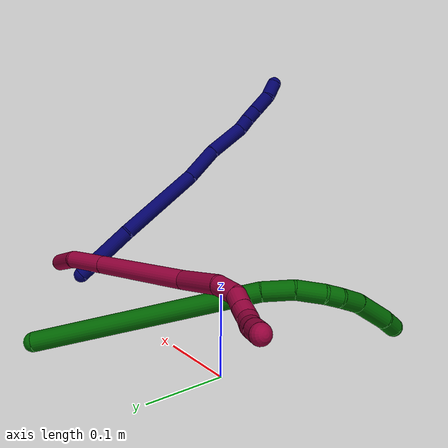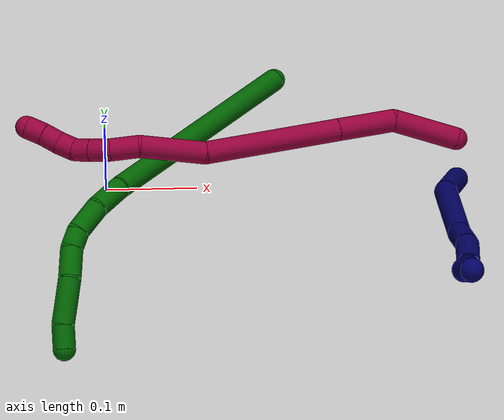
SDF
<sdf version="1.7">
 <world name="default">
  <model name="6">
   <static>0</static>
   <link name="6">
    <collision name="collision-cylinder-e_1_1_4">
     <pose>-0.040347 -0.030012 -0.136554 2.92525 -0.280944 -1.83178</pose>
     <geometry><cylinder><radius>0.0125</radius><length>0.291037</length></cylinder></geometry>
     <surface>
      <friction><ode><mu>1.16</mu><mu2>1.16</mu2><slip1>0</slip1><slip2>0</slip2></ode></friction>
      <contact><ode><kp>1e+06</kp><kd>1</kd><max_vel>0</max_vel><min_depth>0.001</min_depth></ode></contact>
     </surface>
    </collision>
    <visual name="visual-cylinder-e_1_1_4">
     <pose>-0.040347 -0.030012 -0.136554 2.92525 -0.280944 -1.83178</pose>
     <geometry><cylinder><radius>0.0125</radius><length>0.291037</length></cylinder></geometry>
     <material><ambient>0 0.392157 0.003922 1</ambient></material>
    </visual>
    <collision name="collision-cylinder-e_2_4_5">
     <pose>-0.085473 -0.067326 -0.291244 2.75883 -0.239762 -1.11245</pose>
     <geometry><cylinder><radius>0.0125</radius><length>0.040254</length></cylinder></geometry>
     <surface>
      <friction><ode><mu>1.16</mu><mu2>1.16</mu2><slip1>0</slip1><slip2>0</slip2></ode></friction>
      <contact><ode><kp>1e+06</kp><kd>1</kd><max_vel>0</max_vel><min_depth>0.001</min_depth></ode></contact>
     </surface>
    </collision>
    <visual name="visual-cylinder-e_2_4_5">
     <pose>-0.085473 -0.067326 -0.291244 2.75883 -0.239762 -1.11245</pose>
     <geometry><cylinder><radius>0.0125</radius><length>0.040254</length></cylinder></geometry>
     <material><ambient>0 0.392157 0.003922 1</ambient></material>
    </visual>
    <collision name="collision-cylinder-e_3_5_6">
     <pose>-0.094456 -0.085157 -0.323836 2.51209 -0.230875 -0.68429</pose>
     <geometry><cylinder><radius>0.0125</radius><length>0.036742</length></cylinder></geometry>
     <surface>
      <friction><ode><mu>1.16</mu><mu2>1.16</mu2><slip1>0</slip1><slip2>0</slip2></ode></friction>
      <contact><ode><kp>1e+06</kp><kd>1</kd><max_vel>0</max_vel><min_depth>0.001</min_depth></ode></contact>
     </surface>
    </collision>
    <visual name="visual-cylinder-e_3_5_6">
     <pose>-0.094456 -0.085157 -0.323836 2.51209 -0.230875 -0.68429</pose>
     <geometry><cylinder><radius>0.0125</radius><length>0.036742</length></cylinder></geometry>
     <material><ambient>0 0.392157 0.003922 1</ambient></material>
    </visual>
    <collision name="collision-cylinder-e_4_6_7">
     <pose>-0.102871 -0.103115 -0.344403 2.25913 -0.41261 -0.834242</pose>
     <geometry><cylinder><radius>0.0125</radius><length>0.021002</length></cylinder></geometry>
     <surface>
      <friction><ode><mu>1.16</mu><mu2>1.16</mu2><slip1>0</slip1><slip2>0</slip2></ode></friction>
      <contact><ode><kp>1e+06</kp><kd>1</kd><max_vel>0</max_vel><min_depth>0.001</min_depth></ode></contact>
     </surface>
    </collision>
    <visual name="visual-cylinder-e_4_6_7">
     <pose>-0.102871 -0.103115 -0.344403 2.25913 -0.41261 -0.834242</pose>
     <geometry><cylinder><radius>0.0125</radius><length>0.021002</length></cylinder></geometry>
     <material><ambient>0 0.392157 0.003922 1</ambient></material>
    </visual>
    <collision name="collision-cylinder-e_5_7_8">
     <pose>-0.116261 -0.122881 -0.356475 2.02093 -0.590239 -0.902378</pose>
     <geometry><cylinder><radius>0.0125</radius><length>0.032983</length></cylinder></geometry>
     <surface>
      <friction><ode><mu>1.16</mu><mu2>1.16</mu2><slip1>0</slip1><slip2>0</slip2></ode></friction>
      <contact><ode><kp>1e+06</kp><kd>1</kd><max_vel>0</max_vel><min_depth>0.001</min_depth></ode></contact>
     </surface>
    </collision>
    <visual name="visual-cylinder-e_5_7_8">
     <pose>-0.116261 -0.122881 -0.356475 2.02093 -0.590239 -0.902378</pose>
     <geometry><cylinder><radius>0.0125</radius><length>0.032983</length></cylinder></geometry>
     <material><ambient>0 0.392157 0.003922 1</ambient></material>
    </visual>
    <collision name="collision-cylinder-e_6_8_9">
     <pose>-0.135298 -0.157588 -0.37032 1.90962 -0.393922 -0.549542</pose>
     <geometry><cylinder><radius>0.0125</radius><length>0.051371</length></cylinder></geometry>
     <surface>
      <friction><ode><mu>1.16</mu><mu2>1.16</mu2><slip1>0</slip1><slip2>0</slip2></ode></friction>
      <contact><ode><kp>1e+06</kp><kd>1</kd><max_vel>0</max_vel><min_depth>0.001</min_depth></ode></contact>
     </surface>
    </collision>
    <visual name="visual-cylinder-e_6_8_9">
     <pose>-0.135298 -0.157588 -0.37032 1.90962 -0.393922 -0.549542</pose>
     <geometry><cylinder><radius>0.0125</radius><length>0.051371</length></cylinder></geometry>
     <material><ambient>0 0.392157 0.003922 1</ambient></material>
    </visual>
    <collision name="collision-cylinder-e_7_9_2">
     <pose>-0.151438 -0.191566 -0.379881 1.71434 -0.491732 -0.564186</pose>
     <geometry><cylinder><radius>0.0125</radius><length>0.026611</length></cylinder></geometry>
     <surface>
      <friction><ode><mu>1.16</mu><mu2>1.16</mu2><slip1>0</slip1><slip2>0</slip2></ode></friction>
      <contact><ode><kp>1e+06</kp><kd>1</kd><max_vel>0</max_vel><min_depth>0.001</min_depth></ode></contact>
     </surface>
    </collision>
    <visual name="visual-cylinder-e_7_9_2">
     <pose>-0.151438 -0.191566 -0.379881 1.71434 -0.491732 -0.564186</pose>
     <geometry><cylinder><radius>0.0125</radius><length>0.026611</length></cylinder></geometry>
     <material><ambient>0 0.392157 0.003922 1</ambient></material>
    </visual>
    <collision name="collision-sphere-2">
     <pose>-0.157721 -0.203174 -0.381559 0 -0 0</pose>
     <geometry><sphere><radius>0.0125</radius></sphere></geometry>
     <surface>
      <friction><ode><mu>1.16</mu><mu2>1.16</mu2><slip1>0</slip1><slip2>0</slip2></ode></friction>
      <contact><ode><kp>1e+06</kp><kd>1</kd><max_vel>0</max_vel><min_depth>0.001</min_depth></ode></contact>
     </surface>
    </collision>
    <visual name="visual-sphere-2">
     <pose>-0.157721 -0.203174 -0.381559 0 -0 0</pose>
     <geometry><sphere><radius>0.0125</radius></sphere></geometry>
     <material><ambient>0 0.392157 0.003922 1</ambient></material>
    </visual>
    <collision name="collision-sphere-9">
     <pose>-0.145156 -0.179958 -0.378203 0 -0 0</pose>
     <geometry><sphere><radius>0.0125</radius></sphere></geometry>
     <surface>
      <friction><ode><mu>1.16</mu><mu2>1.16</mu2><slip1>0</slip1><slip2>0</slip2></ode></friction>
      <contact><ode><kp>1e+06</kp><kd>1</kd><max_vel>0</max_vel><min_depth>0.001</min_depth></ode></contact>
     </surface>
    </collision>
    <visual name="visual-sphere-9">
     <pose>-0.145156 -0.179958 -0.378203 0 -0 0</pose>
     <geometry><sphere><radius>0.0125</radius></sphere></geometry>
     <material><ambient>0 0.392157 0.003922 1</ambient></material>
    </visual>
    <collision name="collision-sphere-4">
     <pose>-0.080694 -0.060024 -0.273108 0 -0 0</pose>
     <geometry><sphere><radius>0.0125</radius></sphere></geometry>
     <surface>
      <friction><ode><mu>1.16</mu><mu2>1.16</mu2><slip1>0</slip1><slip2>0</slip2></ode></friction>
      <contact><ode><kp>1e+06</kp><kd>1</kd><max_vel>0</max_vel><min_depth>0.001</min_depth></ode></contact>
     </surface>
    </collision>
    <visual name="visual-sphere-4">
     <pose>-0.080694 -0.060024 -0.273108 0 -0 0</pose>
     <geometry><sphere><radius>0.0125</radius></sphere></geometry>
     <material><ambient>0 0.392157 0.003922 1</ambient></material>
    </visual>
    <collision name="collision-sphere-1">
     <geometry><sphere><radius>0.0125</radius></sphere></geometry>
     <surface>
      <friction><ode><mu>1.16</mu><mu2>1.16</mu2><slip1>0</slip1><slip2>0</slip2></ode></friction>
      <contact><ode><kp>1e+06</kp><kd>1</kd><max_vel>0</max_vel><min_depth>0.001</min_depth></ode></contact>
     </surface>
    </collision>
    <visual name="visual-sphere-1">
     <geometry><sphere><radius>0.0125</radius></sphere></geometry>
     <material><ambient>0 0.392157 0.003922 1</ambient></material>
    </visual>
    <collision name="collision-sphere-8">
     <pose>-0.125439 -0.135218 -0.362436 0 -0 0</pose>
     <geometry><sphere><radius>0.0125</radius></sphere></geometry>
     <surface>
      <friction><ode><mu>1.16</mu><mu2>1.16</mu2><slip1>0</slip1><slip2>0</slip2></ode></friction>
      <contact><ode><kp>1e+06</kp><kd>1</kd><max_vel>0</max_vel><min_depth>0.001</min_depth></ode></contact>
     </surface>
    </collision>
    <visual name="visual-sphere-8">
     <pose>-0.125439 -0.135218 -0.362436 0 -0 0</pose>
     <geometry><sphere><radius>0.0125</radius></sphere></geometry>
     <material><ambient>0 0.392157 0.003922 1</ambient></material>
    </visual>
    <collision name="collision-sphere-5">
     <pose>-0.090253 -0.074628 -0.309381 0 -0 0</pose>
     <geometry><sphere><radius>0.0125</radius></sphere></geometry>
     <surface>
      <friction><ode><mu>1.16</mu><mu2>1.16</mu2><slip1>0</slip1><slip2>0</slip2></ode></friction>
      <contact><ode><kp>1e+06</kp><kd>1</kd><max_vel>0</max_vel><min_depth>0.001</min_depth></ode></contact>
     </surface>
    </collision>
    <visual name="visual-sphere-5">
     <pose>-0.090253 -0.074628 -0.309381 0 -0 0</pose>
     <geometry><sphere><radius>0.0125</radius></sphere></geometry>
     <material><ambient>0 0.392157 0.003922 1</ambient></material>
    </visual>
    <collision name="collision-sphere-6">
     <pose>-0.09866 -0.095686 -0.338292 0 -0 0</pose>
     <geometry><sphere><radius>0.0125</radius></sphere></geometry>
     <surface>
      <friction><ode><mu>1.16</mu><mu2>1.16</mu2><slip1>0</slip1><slip2>0</slip2></ode></friction>
      <contact><ode><kp>1e+06</kp><kd>1</kd><max_vel>0</max_vel><min_depth>0.001</min_depth></ode></contact>
     </surface>
    </collision>
    <visual name="visual-sphere-6">
     <pose>-0.09866 -0.095686 -0.338292 0 -0 0</pose>
     <geometry><sphere><radius>0.0125</radius></sphere></geometry>
     <material><ambient>0 0.392157 0.003922 1</ambient></material>
    </visual>
    <collision name="collision-sphere-7">
     <pose>-0.107082 -0.110545 -0.350514 0 -0 0</pose>
     <geometry><sphere><radius>0.0125</radius></sphere></geometry>
     <surface>
      <friction><ode><mu>1.16</mu><mu2>1.16</mu2><slip1>0</slip1><slip2>0</slip2></ode></friction>
      <contact><ode><kp>1e+06</kp><kd>1</kd><max_vel>0</max_vel><min_depth>0.001</min_depth></ode></contact>
     </surface>
    </collision>
    <visual name="visual-sphere-7">
     <pose>-0.107082 -0.110545 -0.350514 0 -0 0</pose>
     <geometry><sphere><radius>0.0125</radius></sphere></geometry>
     <material><ambient>0 0.392157 0.003922 1</ambient></material>
    </visual>
    <inertial>
     <pose>-0.071258 -0.067971 -0.222976 0 -0 0</pose>
     <mass>0.5</mass>
     <inertia>
      <ixx>-0.00244</ixx>
      <ixy>0</ixy>
      <ixz>0</ixz>
      <iyy>-0.001321</iyy>
      <iyz>0</iyz>
      <izz>0.001005</izz>
     </inertia>
    </inertial>
   </link>
   <pose>0.191179 0.148657 0.012499 1.97846 0.241795 2.23309</pose>
  </model>
  <model name="7">
   <static>0</static>
   <link name="7">
    <collision name="collision-cylinder-e_1_1_4">
     <pose>-0.023891 -0.003739 -0.044126 3.05706 -0.494738 -2.80974</pose>
     <geometry><cylinder><radius>0.0125</radius><length>0.100635</length></cylinder></geometry>
     <surface>
      <friction><ode><mu>1.16</mu><mu2>1.16</mu2><slip1>0</slip1><slip2>0</slip2></ode></friction>
      <contact><ode><kp>1e+06</kp><kd>1</kd><max_vel>0</max_vel><min_depth>0.001</min_depth></ode></contact>
     </surface>
    </collision>
    <visual name="visual-cylinder-e_1_1_4">
     <pose>-0.023891 -0.003739 -0.044126 3.05706 -0.494738 -2.80974</pose>
     <geometry><cylinder><radius>0.0125</radius><length>0.100635</length></cylinder></geometry>
     <material><ambient>0.003922 0 0.403922 1</ambient></material>
    </visual>
    <collision name="collision-cylinder-e_2_4_5">
     <pose>-0.099472 -0.017056 -0.142982 2.96834 -0.74932 -2.70688</pose>
     <geometry><cylinder><radius>0.0125</radius><length>0.151776</length></cylinder></geometry>
     <surface>
      <friction><ode><mu>1.16</mu><mu2>1.16</mu2><slip1>0</slip1><slip2>0</slip2></ode></friction>
      <contact><ode><kp>1e+06</kp><kd>1</kd><max_vel>0</max_vel><min_depth>0.001</min_depth></ode></contact>
     </surface>
    </collision>
    <visual name="visual-cylinder-e_2_4_5">
     <pose>-0.099472 -0.017056 -0.142982 2.96834 -0.74932 -2.70688</pose>
     <geometry><cylinder><radius>0.0125</radius><length>0.151776</length></cylinder></geometry>
     <material><ambient>0.003922 0 0.403922 1</ambient></material>
    </visual>
    <collision name="collision-cylinder-e_3_5_6">
     <pose>-0.172943 -0.026813 -0.221764 3.13416 -0.735852 -3.12231</pose>
     <geometry><cylinder><radius>0.0125</radius><length>0.064898</length></cylinder></geometry>
     <surface>
      <friction><ode><mu>1.16</mu><mu2>1.16</mu2><slip1>0</slip1><slip2>0</slip2></ode></friction>
      <contact><ode><kp>1e+06</kp><kd>1</kd><max_vel>0</max_vel><min_depth>0.001</min_depth></ode></contact>
     </surface>
    </collision>
    <visual name="visual-cylinder-e_3_5_6">
     <pose>-0.172943 -0.026813 -0.221764 3.13416 -0.735852 -3.12231</pose>
     <geometry><cylinder><radius>0.0125</radius><length>0.064898</length></cylinder></geometry>
     <material><ambient>0.003922 0 0.403922 1</ambient></material>
    </visual>
    <collision name="collision-cylinder-e_4_6_7">
     <pose>-0.216555 -0.032418 -0.273187 2.94589 -0.663941 -2.58675</pose>
     <geometry><cylinder><radius>0.0125</radius><length>0.070857</length></cylinder></geometry>
     <surface>
      <friction><ode><mu>1.16</mu><mu2>1.16</mu2><slip1>0</slip1><slip2>0</slip2></ode></friction>
      <contact><ode><kp>1e+06</kp><kd>1</kd><max_vel>0</max_vel><min_depth>0.001</min_depth></ode></contact>
     </surface>
    </collision>
    <visual name="visual-cylinder-e_4_6_7">
     <pose>-0.216555 -0.032418 -0.273187 2.94589 -0.663941 -2.58675</pose>
     <geometry><cylinder><radius>0.0125</radius><length>0.070857</length></cylinder></geometry>
     <material><ambient>0.003922 0 0.403922 1</ambient></material>
    </visual>
    <collision name="collision-cylinder-e_5_7_8">
     <pose>-0.244227 -0.03689 -0.310381 -3.04481 -0.534212 2.79128</pose>
     <geometry><cylinder><radius>0.0125</radius><length>0.022937</length></cylinder></geometry>
     <surface>
      <friction><ode><mu>1.16</mu><mu2>1.16</mu2><slip1>0</slip1><slip2>0</slip2></ode></friction>
      <contact><ode><kp>1e+06</kp><kd>1</kd><max_vel>0</max_vel><min_depth>0.001</min_depth></ode></contact>
     </surface>
    </collision>
    <visual name="visual-cylinder-e_5_7_8">
     <pose>-0.244227 -0.03689 -0.310381 -3.04481 -0.534212 2.79128</pose>
     <geometry><cylinder><radius>0.0125</radius><length>0.022937</length></cylinder></geometry>
     <material><ambient>0.003922 0 0.403922 1</ambient></material>
    </visual>
    <collision name="collision-cylinder-e_6_8_9">
     <pose>-0.255653 -0.035663 -0.330107 -3.11399 -0.513535 3.03654</pose>
     <geometry><cylinder><radius>0.0125</radius><length>0.022744</length></cylinder></geometry>
     <surface>
      <friction><ode><mu>1.16</mu><mu2>1.16</mu2><slip1>0</slip1><slip2>0</slip2></ode></friction>
      <contact><ode><kp>1e+06</kp><kd>1</kd><max_vel>0</max_vel><min_depth>0.001</min_depth></ode></contact>
     </surface>
    </collision>
    <visual name="visual-cylinder-e_6_8_9">
     <pose>-0.255653 -0.035663 -0.330107 -3.11399 -0.513535 3.03654</pose>
     <geometry><cylinder><radius>0.0125</radius><length>0.022744</length></cylinder></geometry>
     <material><ambient>0.003922 0 0.403922 1</ambient></material>
    </visual>
    <collision name="collision-cylinder-e_7_9_10">
     <pose>-0.269679 -0.03504 -0.355597 -3.11918 -0.496127 3.05317</pose>
     <geometry><cylinder><radius>0.0125</radius><length>0.035459</length></cylinder></geometry>
     <surface>
      <friction><ode><mu>1.16</mu><mu2>1.16</mu2><slip1>0</slip1><slip2>0</slip2></ode></friction>
      <contact><ode><kp>1e+06</kp><kd>1</kd><max_vel>0</max_vel><min_depth>0.001</min_depth></ode></contact>
     </surface>
    </collision>
    <visual name="visual-cylinder-e_7_9_10">
     <pose>-0.269679 -0.03504 -0.355597 -3.11918 -0.496127 3.05317</pose>
     <geometry><cylinder><radius>0.0125</radius><length>0.035459</length></cylinder></geometry>
     <material><ambient>0.003922 0 0.403922 1</ambient></material>
    </visual>
    <collision name="collision-cylinder-e_8_10_2">
     <pose>-0.288929 -0.031421 -0.381575 -2.83674 -0.78161 2.42781</pose>
     <geometry><cylinder><radius>0.0125</radius><length>0.030693</length></cylinder></geometry>
     <surface>
      <friction><ode><mu>1.16</mu><mu2>1.16</mu2><slip1>0</slip1><slip2>0</slip2></ode></friction>
      <contact><ode><kp>1e+06</kp><kd>1</kd><max_vel>0</max_vel><min_depth>0.001</min_depth></ode></contact>
     </surface>
    </collision>
    <visual name="visual-cylinder-e_8_10_2">
     <pose>-0.288929 -0.031421 -0.381575 -2.83674 -0.78161 2.42781</pose>
     <geometry><cylinder><radius>0.0125</radius><length>0.030693</length></cylinder></geometry>
     <material><ambient>0.003922 0 0.403922 1</ambient></material>
    </visual>
    <collision name="collision-sphere-2">
     <pose>-0.299739 -0.028152 -0.391965 0 -0 0</pose>
     <geometry><sphere><radius>0.0125</radius></sphere></geometry>
     <surface>
      <friction><ode><mu>1.16</mu><mu2>1.16</mu2><slip1>0</slip1><slip2>0</slip2></ode></friction>
      <contact><ode><kp>1e+06</kp><kd>1</kd><max_vel>0</max_vel><min_depth>0.001</min_depth></ode></contact>
     </surface>
    </collision>
    <visual name="visual-sphere-2">
     <pose>-0.299739 -0.028152 -0.391965 0 -0 0</pose>
     <geometry><sphere><radius>0.0125</radius></sphere></geometry>
     <material><ambient>0.003922 0 0.403922 1</ambient></material>
    </visual>
    <collision name="collision-sphere-10">
     <pose>-0.278119 -0.034691 -0.371185 0 -0 0</pose>
     <geometry><sphere><radius>0.0125</radius></sphere></geometry>
     <surface>
      <friction><ode><mu>1.16</mu><mu2>1.16</mu2><slip1>0</slip1><slip2>0</slip2></ode></friction>
      <contact><ode><kp>1e+06</kp><kd>1</kd><max_vel>0</max_vel><min_depth>0.001</min_depth></ode></contact>
     </surface>
    </collision>
    <visual name="visual-sphere-10">
     <pose>-0.278119 -0.034691 -0.371185 0 -0 0</pose>
     <geometry><sphere><radius>0.0125</radius></sphere></geometry>
     <material><ambient>0.003922 0 0.403922 1</ambient></material>
    </visual>
    <collision name="collision-sphere-9">
     <pose>-0.26124 -0.035389 -0.340009 0 -0 0</pose>
     <geometry><sphere><radius>0.0125</radius></sphere></geometry>
     <surface>
      <friction><ode><mu>1.16</mu><mu2>1.16</mu2><slip1>0</slip1><slip2>0</slip2></ode></friction>
      <contact><ode><kp>1e+06</kp><kd>1</kd><max_vel>0</max_vel><min_depth>0.001</min_depth></ode></contact>
     </surface>
    </collision>
    <visual name="visual-sphere-9">
     <pose>-0.26124 -0.035389 -0.340009 0 -0 0</pose>
     <geometry><sphere><radius>0.0125</radius></sphere></geometry>
     <material><ambient>0.003922 0 0.403922 1</ambient></material>
    </visual>
    <collision name="collision-sphere-4">
     <pose>-0.047782 -0.007478 -0.088252 0 -0 0</pose>
     <geometry><sphere><radius>0.0125</radius></sphere></geometry>
     <surface>
      <friction><ode><mu>1.16</mu><mu2>1.16</mu2><slip1>0</slip1><slip2>0</slip2></ode></friction>
      <contact><ode><kp>1e+06</kp><kd>1</kd><max_vel>0</max_vel><min_depth>0.001</min_depth></ode></contact>
     </surface>
    </collision>
    <visual name="visual-sphere-4">
     <pose>-0.047782 -0.007478 -0.088252 0 -0 0</pose>
     <geometry><sphere><radius>0.0125</radius></sphere></geometry>
     <material><ambient>0.003922 0 0.403922 1</ambient></material>
    </visual>
    <collision name="collision-sphere-1">
     <geometry><sphere><radius>0.0125</radius></sphere></geometry>
     <surface>
      <friction><ode><mu>1.16</mu><mu2>1.16</mu2><slip1>0</slip1><slip2>0</slip2></ode></friction>
      <contact><ode><kp>1e+06</kp><kd>1</kd><max_vel>0</max_vel><min_depth>0.001</min_depth></ode></contact>
     </surface>
    </collision>
    <visual name="visual-sphere-1">
     <geometry><sphere><radius>0.0125</radius></sphere></geometry>
     <material><ambient>0.003922 0 0.403922 1</ambient></material>
    </visual>
    <collision name="collision-sphere-8">
     <pose>-0.250066 -0.035936 -0.320206 0 -0 0</pose>
     <geometry><sphere><radius>0.0125</radius></sphere></geometry>
     <surface>
      <friction><ode><mu>1.16</mu><mu2>1.16</mu2><slip1>0</slip1><slip2>0</slip2></ode></friction>
      <contact><ode><kp>1e+06</kp><kd>1</kd><max_vel>0</max_vel><min_depth>0.001</min_depth></ode></contact>
     </surface>
    </collision>
    <visual name="visual-sphere-8">
     <pose>-0.250066 -0.035936 -0.320206 0 -0 0</pose>
     <geometry><sphere><radius>0.0125</radius></sphere></geometry>
     <material><ambient>0.003922 0 0.403922 1</ambient></material>
    </visual>
    <collision name="collision-sphere-5">
     <pose>-0.151163 -0.026634 -0.197712 0 -0 0</pose>
     <geometry><sphere><radius>0.0125</radius></sphere></geometry>
     <surface>
      <friction><ode><mu>1.16</mu><mu2>1.16</mu2><slip1>0</slip1><slip2>0</slip2></ode></friction>
      <contact><ode><kp>1e+06</kp><kd>1</kd><max_vel>0</max_vel><min_depth>0.001</min_depth></ode></contact>
     </surface>
    </collision>
    <visual name="visual-sphere-5">
     <pose>-0.151163 -0.026634 -0.197712 0 -0 0</pose>
     <geometry><sphere><radius>0.0125</radius></sphere></geometry>
     <material><ambient>0.003922 0 0.403922 1</ambient></material>
    </visual>
    <collision name="collision-sphere-6">
     <pose>-0.194723 -0.026992 -0.245817 0 -0 0</pose>
     <geometry><sphere><radius>0.0125</radius></sphere></geometry>
     <surface>
      <friction><ode><mu>1.16</mu><mu2>1.16</mu2><slip1>0</slip1><slip2>0</slip2></ode></friction>
      <contact><ode><kp>1e+06</kp><kd>1</kd><max_vel>0</max_vel><min_depth>0.001</min_depth></ode></contact>
     </surface>
    </collision>
    <visual name="visual-sphere-6">
     <pose>-0.194723 -0.026992 -0.245817 0 -0 0</pose>
     <geometry><sphere><radius>0.0125</radius></sphere></geometry>
     <material><ambient>0.003922 0 0.403922 1</ambient></material>
    </visual>
    <collision name="collision-sphere-7">
     <pose>-0.238387 -0.037844 -0.300556 0 -0 0</pose>
     <geometry><sphere><radius>0.0125</radius></sphere></geometry>
     <surface>
      <friction><ode><mu>1.16</mu><mu2>1.16</mu2><slip1>0</slip1><slip2>0</slip2></ode></friction>
      <contact><ode><kp>1e+06</kp><kd>1</kd><max_vel>0</max_vel><min_depth>0.001</min_depth></ode></contact>
     </surface>
    </collision>
    <visual name="visual-sphere-7">
     <pose>-0.238387 -0.037844 -0.300556 0 -0 0</pose>
     <geometry><sphere><radius>0.0125</radius></sphere></geometry>
     <material><ambient>0.003922 0 0.403922 1</ambient></material>
    </visual>
    <inertial>
     <pose>-0.147834 -0.021733 -0.197679 0 -0 0</pose>
     <mass>0.5</mass>
     <inertia>
      <ixx>-0.000473</ixx>
      <ixy>0</ixy>
      <ixz>0</ixz>
      <iyy>0.000301</iyy>
      <iyz>0</iyz>
      <izz>0.000306</izz>
     </inertia>
    </inertial>
   </link>
   <pose>0.387459 -0.007732 0.012429 2.35362 0.145184 2.38078</pose>
  </model>
  <model name="8">
   <static>0</static>
   <link name="8">
    <collision name="collision-cylinder-e_1_1_4">
     <pose>-0.00151 0.002702 -0.036924 -3.06854 -0.04076 1.0176</pose>
     <geometry><cylinder><radius>0.0125</radius><length>0.074106</length></cylinder></geometry>
     <surface>
      <friction><ode><mu>1.16</mu><mu2>1.16</mu2><slip1>0</slip1><slip2>0</slip2></ode></friction>
      <contact><ode><kp>1e+06</kp><kd>1</kd><max_vel>0</max_vel><min_depth>0.001</min_depth></ode></contact>
     </surface>
    </collision>
    <visual name="visual-cylinder-e_1_1_4">
     <pose>-0.00151 0.002702 -0.036924 -3.06854 -0.04076 1.0176</pose>
     <geometry><cylinder><radius>0.0125</radius><length>0.074106</length></cylinder></geometry>
     <material><ambient>0.584314 0 0.227451 1</ambient></material>
    </visual>
    <collision name="collision-cylinder-e_2_4_5">
     <pose>-0.015308 0.015651 -0.10195 -2.79197 -0.389779 1.6818</pose>
     <geometry><cylinder><radius>0.0125</radius><length>0.064675</length></cylinder></geometry>
     <surface>
      <friction><ode><mu>1.16</mu><mu2>1.16</mu2><slip1>0</slip1><slip2>0</slip2></ode></friction>
      <contact><ode><kp>1e+06</kp><kd>1</kd><max_vel>0</max_vel><min_depth>0.001</min_depth></ode></contact>
     </surface>
    </collision>
    <visual name="visual-cylinder-e_2_4_5">
     <pose>-0.015308 0.015651 -0.10195 -2.79197 -0.389779 1.6818</pose>
     <geometry><cylinder><radius>0.0125</radius><length>0.064675</length></cylinder></geometry>
     <material><ambient>0.584314 0 0.227451 1</ambient></material>
    </visual>
    <collision name="collision-cylinder-e_3_5_6">
     <pose>-0.057043 0.050036 -0.196285 -2.79209 -0.395693 1.69749</pose>
     <geometry><cylinder><radius>0.0125</radius><length>0.152796</length></cylinder></geometry>
     <surface>
      <friction><ode><mu>1.16</mu><mu2>1.16</mu2><slip1>0</slip1><slip2>0</slip2></ode></friction>
      <contact><ode><kp>1e+06</kp><kd>1</kd><max_vel>0</max_vel><min_depth>0.001</min_depth></ode></contact>
     </surface>
    </collision>
    <visual name="visual-cylinder-e_3_5_6">
     <pose>-0.057043 0.050036 -0.196285 -2.79209 -0.395693 1.69749</pose>
     <geometry><cylinder><radius>0.0125</radius><length>0.152796</length></cylinder></geometry>
     <material><ambient>0.584314 0 0.227451 1</ambient></material>
    </visual>
    <collision name="collision-cylinder-e_4_6_7">
     <pose>-0.094086 0.079118 -0.298042 -3.00337 -0.208704 1.97351</pose>
     <geometry><cylinder><radius>0.0125</radius><length>0.073325</length></cylinder></geometry>
     <surface>
      <friction><ode><mu>1.16</mu><mu2>1.16</mu2><slip1>0</slip1><slip2>0</slip2></ode></friction>
      <contact><ode><kp>1e+06</kp><kd>1</kd><max_vel>0</max_vel><min_depth>0.001</min_depth></ode></contact>
     </surface>
    </collision>
    <visual name="visual-cylinder-e_4_6_7">
     <pose>-0.094086 0.079118 -0.298042 -3.00337 -0.208704 1.97351</pose>
     <geometry><cylinder><radius>0.0125</radius><length>0.073325</length></cylinder></geometry>
     <material><ambient>0.584314 0 0.227451 1</ambient></material>
    </visual>
    <collision name="collision-cylinder-e_5_7_8">
     <pose>-0.109299 0.085038 -0.34776 -3.0728 -0.491532 2.86892</pose>
     <geometry><cylinder><radius>0.0125</radius><length>0.032274</length></cylinder></geometry>
     <surface>
      <friction><ode><mu>1.16</mu><mu2>1.16</mu2><slip1>0</slip1><slip2>0</slip2></ode></friction>
      <contact><ode><kp>1e+06</kp><kd>1</kd><max_vel>0</max_vel><min_depth>0.001</min_depth></ode></contact>
     </surface>
    </collision>
    <visual name="visual-cylinder-e_5_7_8">
     <pose>-0.109299 0.085038 -0.34776 -3.0728 -0.491532 2.86892</pose>
     <geometry><cylinder><radius>0.0125</radius><length>0.032274</length></cylinder></geometry>
     <material><ambient>0.584314 0 0.227451 1</ambient></material>
    </visual>
    <collision name="collision-cylinder-e_6_8_9">
     <pose>-0.122916 0.081789 -0.370519 2.6832 -0.560937 -1.78011</pose>
     <geometry><cylinder><radius>0.0125</radius><length>0.022562</length></cylinder></geometry>
     <surface>
      <friction><ode><mu>1.16</mu><mu2>1.16</mu2><slip1>0</slip1><slip2>0</slip2></ode></friction>
      <contact><ode><kp>1e+06</kp><kd>1</kd><max_vel>0</max_vel><min_depth>0.001</min_depth></ode></contact>
     </surface>
    </collision>
    <visual name="visual-cylinder-e_6_8_9">
     <pose>-0.122916 0.081789 -0.370519 2.6832 -0.560937 -1.78011</pose>
     <geometry><cylinder><radius>0.0125</radius><length>0.022562</length></cylinder></geometry>
     <material><ambient>0.584314 0 0.227451 1</ambient></material>
    </visual>
    <collision name="collision-cylinder-e_7_9_10">
     <pose>-0.133756 0.074128 -0.387232 2.74268 -0.500789 -1.80391</pose>
     <geometry><cylinder><radius>0.0125</radius><length>0.020157</length></cylinder></geometry>
     <surface>
      <friction><ode><mu>1.16</mu><mu2>1.16</mu2><slip1>0</slip1><slip2>0</slip2></ode></friction>
      <contact><ode><kp>1e+06</kp><kd>1</kd><max_vel>0</max_vel><min_depth>0.001</min_depth></ode></contact>
     </surface>
    </collision>
    <visual name="visual-cylinder-e_7_9_10">
     <pose>-0.133756 0.074128 -0.387232 2.74268 -0.500789 -1.80391</pose>
     <geometry><cylinder><radius>0.0125</radius><length>0.020157</length></cylinder></geometry>
     <material><ambient>0.584314 0 0.227451 1</ambient></material>
    </visual>
    <collision name="collision-cylinder-e_8_10_11">
     <pose>-0.140041 0.06635 -0.404317 2.68921 -0.144503 -0.609424</pose>
     <geometry><cylinder><radius>0.0125</radius><length>0.020085</length></cylinder></geometry>
     <surface>
      <friction><ode><mu>1.16</mu><mu2>1.16</mu2><slip1>0</slip1><slip2>0</slip2></ode></friction>
      <contact><ode><kp>1e+06</kp><kd>1</kd><max_vel>0</max_vel><min_depth>0.001</min_depth></ode></contact>
     </surface>
    </collision>
    <visual name="visual-cylinder-e_8_10_11">
     <pose>-0.140041 0.06635 -0.404317 2.68921 -0.144503 -0.609424</pose>
     <geometry><cylinder><radius>0.0125</radius><length>0.020085</length></cylinder></geometry>
     <material><ambient>0.584314 0 0.227451 1</ambient></material>
    </visual>
    <collision name="collision-cylinder-e_9_11_12">
     <pose>-0.141177 0.059069 -0.422816 2.84351 0.031074 0.206225</pose>
     <geometry><cylinder><radius>0.0125</radius><length>0.020014</length></cylinder></geometry>
     <surface>
      <friction><ode><mu>1.16</mu><mu2>1.16</mu2><slip1>0</slip1><slip2>0</slip2></ode></friction>
      <contact><ode><kp>1e+06</kp><kd>1</kd><max_vel>0</max_vel><min_depth>0.001</min_depth></ode></contact>
     </surface>
    </collision>
    <visual name="visual-cylinder-e_9_11_12">
     <pose>-0.141177 0.059069 -0.422816 2.84351 0.031074 0.206225</pose>
     <geometry><cylinder><radius>0.0125</radius><length>0.020014</length></cylinder></geometry>
     <material><ambient>0.584314 0 0.227451 1</ambient></material>
    </visual>
    <collision name="collision-cylinder-e_10_12_2">
     <pose>-0.141509 0.053576 -0.442026 2.88268 -0.064305 -0.484429</pose>
     <geometry><cylinder><radius>0.0125</radius><length>0.020006</length></cylinder></geometry>
     <surface>
      <friction><ode><mu>1.16</mu><mu2>1.16</mu2><slip1>0</slip1><slip2>0</slip2></ode></friction>
      <contact><ode><kp>1e+06</kp><kd>1</kd><max_vel>0</max_vel><min_depth>0.001</min_depth></ode></contact>
     </surface>
    </collision>
    <visual name="visual-cylinder-e_10_12_2">
     <pose>-0.141509 0.053576 -0.442026 2.88268 -0.064305 -0.484429</pose>
     <geometry><cylinder><radius>0.0125</radius><length>0.020006</length></cylinder></geometry>
     <material><ambient>0.584314 0 0.227451 1</ambient></material>
    </visual>
    <collision name="collision-sphere-2">
     <pose>-0.142151 0.05102 -0.451676 0 -0 0</pose>
     <geometry><sphere><radius>0.0125</radius></sphere></geometry>
     <surface>
      <friction><ode><mu>1.16</mu><mu2>1.16</mu2><slip1>0</slip1><slip2>0</slip2></ode></friction>
      <contact><ode><kp>1e+06</kp><kd>1</kd><max_vel>0</max_vel><min_depth>0.001</min_depth></ode></contact>
     </surface>
    </collision>
    <visual name="visual-sphere-2">
     <pose>-0.142151 0.05102 -0.451676 0 -0 0</pose>
     <geometry><sphere><radius>0.0125</radius></sphere></geometry>
     <material><ambient>0.584314 0 0.227451 1</ambient></material>
    </visual>
    <collision name="collision-sphere-12">
     <pose>-0.140866 0.056131 -0.432377 0 -0 0</pose>
     <geometry><sphere><radius>0.0125</radius></sphere></geometry>
     <surface>
      <friction><ode><mu>1.16</mu><mu2>1.16</mu2><slip1>0</slip1><slip2>0</slip2></ode></friction>
      <contact><ode><kp>1e+06</kp><kd>1</kd><max_vel>0</max_vel><min_depth>0.001</min_depth></ode></contact>
     </surface>
    </collision>
    <visual name="visual-sphere-12">
     <pose>-0.140866 0.056131 -0.432377 0 -0 0</pose>
     <geometry><sphere><radius>0.0125</radius></sphere></geometry>
     <material><ambient>0.584314 0 0.227451 1</ambient></material>
    </visual>
    <collision name="collision-sphere-11">
     <pose>-0.141488 0.062006 -0.413255 0 -0 0</pose>
     <geometry><sphere><radius>0.0125</radius></sphere></geometry>
     <surface>
      <friction><ode><mu>1.16</mu><mu2>1.16</mu2><slip1>0</slip1><slip2>0</slip2></ode></friction>
      <contact><ode><kp>1e+06</kp><kd>1</kd><max_vel>0</max_vel><min_depth>0.001</min_depth></ode></contact>
     </surface>
    </collision>
    <visual name="visual-sphere-11">
     <pose>-0.141488 0.062006 -0.413255 0 -0 0</pose>
     <geometry><sphere><radius>0.0125</radius></sphere></geometry>
     <material><ambient>0.584314 0 0.227451 1</ambient></material>
    </visual>
    <collision name="collision-sphere-10">
     <pose>-0.138595 0.070694 -0.395379 0 -0 0</pose>
     <geometry><sphere><radius>0.0125</radius></sphere></geometry>
     <surface>
      <friction><ode><mu>1.16</mu><mu2>1.16</mu2><slip1>0</slip1><slip2>0</slip2></ode></friction>
      <contact><ode><kp>1e+06</kp><kd>1</kd><max_vel>0</max_vel><min_depth>0.001</min_depth></ode></contact>
     </surface>
    </collision>
    <visual name="visual-sphere-10">
     <pose>-0.138595 0.070694 -0.395379 0 -0 0</pose>
     <geometry><sphere><radius>0.0125</radius></sphere></geometry>
     <material><ambient>0.584314 0 0.227451 1</ambient></material>
    </visual>
    <collision name="collision-sphere-9">
     <pose>-0.128918 0.077562 -0.379085 0 -0 0</pose>
     <geometry><sphere><radius>0.0125</radius></sphere></geometry>
     <surface>
      <friction><ode><mu>1.16</mu><mu2>1.16</mu2><slip1>0</slip1><slip2>0</slip2></ode></friction>
      <contact><ode><kp>1e+06</kp><kd>1</kd><max_vel>0</max_vel><min_depth>0.001</min_depth></ode></contact>
     </surface>
    </collision>
    <visual name="visual-sphere-9">
     <pose>-0.128918 0.077562 -0.379085 0 -0 0</pose>
     <geometry><sphere><radius>0.0125</radius></sphere></geometry>
     <material><ambient>0.584314 0 0.227451 1</ambient></material>
    </visual>
    <collision name="collision-sphere-4">
     <pose>-0.00302 0.005404 -0.073847 0 -0 0</pose>
     <geometry><sphere><radius>0.0125</radius></sphere></geometry>
     <surface>
      <friction><ode><mu>1.16</mu><mu2>1.16</mu2><slip1>0</slip1><slip2>0</slip2></ode></friction>
      <contact><ode><kp>1e+06</kp><kd>1</kd><max_vel>0</max_vel><min_depth>0.001</min_depth></ode></contact>
     </surface>
    </collision>
    <visual name="visual-sphere-4">
     <pose>-0.00302 0.005404 -0.073847 0 -0 0</pose>
     <geometry><sphere><radius>0.0125</radius></sphere></geometry>
     <material><ambient>0.584314 0 0.227451 1</ambient></material>
    </visual>
    <collision name="collision-sphere-1">
     <geometry><sphere><radius>0.0125</radius></sphere></geometry>
     <surface>
      <friction><ode><mu>1.16</mu><mu2>1.16</mu2><slip1>0</slip1><slip2>0</slip2></ode></friction>
      <contact><ode><kp>1e+06</kp><kd>1</kd><max_vel>0</max_vel><min_depth>0.001</min_depth></ode></contact>
     </surface>
    </collision>
    <visual name="visual-sphere-1">
     <geometry><sphere><radius>0.0125</radius></sphere></geometry>
     <material><ambient>0.584314 0 0.227451 1</ambient></material>
    </visual>
    <collision name="collision-sphere-8">
     <pose>-0.116915 0.086016 -0.361953 0 -0 0</pose>
     <geometry><sphere><radius>0.0125</radius></sphere></geometry>
     <surface>
      <friction><ode><mu>1.16</mu><mu2>1.16</mu2><slip1>0</slip1><slip2>0</slip2></ode></friction>
      <contact><ode><kp>1e+06</kp><kd>1</kd><max_vel>0</max_vel><min_depth>0.001</min_depth></ode></contact>
     </surface>
    </collision>
    <visual name="visual-sphere-8">
     <pose>-0.116915 0.086016 -0.361953 0 -0 0</pose>
     <geometry><sphere><radius>0.0125</radius></sphere></geometry>
     <material><ambient>0.584314 0 0.227451 1</ambient></material>
    </visual>
    <collision name="collision-sphere-5">
     <pose>-0.027595 0.025897 -0.130052 0 -0 0</pose>
     <geometry><sphere><radius>0.0125</radius></sphere></geometry>
     <surface>
      <friction><ode><mu>1.16</mu><mu2>1.16</mu2><slip1>0</slip1><slip2>0</slip2></ode></friction>
      <contact><ode><kp>1e+06</kp><kd>1</kd><max_vel>0</max_vel><min_depth>0.001</min_depth></ode></contact>
     </surface>
    </collision>
    <visual name="visual-sphere-5">
     <pose>-0.027595 0.025897 -0.130052 0 -0 0</pose>
     <geometry><sphere><radius>0.0125</radius></sphere></geometry>
     <material><ambient>0.584314 0 0.227451 1</ambient></material>
    </visual>
    <collision name="collision-sphere-6">
     <pose>-0.08649 0.074176 -0.262518 0 -0 0</pose>
     <geometry><sphere><radius>0.0125</radius></sphere></geometry>
     <surface>
      <friction><ode><mu>1.16</mu><mu2>1.16</mu2><slip1>0</slip1><slip2>0</slip2></ode></friction>
      <contact><ode><kp>1e+06</kp><kd>1</kd><max_vel>0</max_vel><min_depth>0.001</min_depth></ode></contact>
     </surface>
    </collision>
    <visual name="visual-sphere-6">
     <pose>-0.08649 0.074176 -0.262518 0 -0 0</pose>
     <geometry><sphere><radius>0.0125</radius></sphere></geometry>
     <material><ambient>0.584314 0 0.227451 1</ambient></material>
    </visual>
    <collision name="collision-sphere-7">
     <pose>-0.101682 0.08406 -0.333567 0 -0 0</pose>
     <geometry><sphere><radius>0.0125</radius></sphere></geometry>
     <surface>
      <friction><ode><mu>1.16</mu><mu2>1.16</mu2><slip1>0</slip1><slip2>0</slip2></ode></friction>
      <contact><ode><kp>1e+06</kp><kd>1</kd><max_vel>0</max_vel><min_depth>0.001</min_depth></ode></contact>
     </surface>
    </collision>
    <visual name="visual-sphere-7">
     <pose>-0.101682 0.08406 -0.333567 0 -0 0</pose>
     <geometry><sphere><radius>0.0125</radius></sphere></geometry>
     <material><ambient>0.584314 0 0.227451 1</ambient></material>
    </visual>
    <inertial>
     <pose>-0.068366 0.04866 -0.22798 0 -0 0</pose>
     <mass>0.5</mass>
     <inertia><ixx>0.000317</ixx><ixy>0</ixy><ixz>0</ixz><iyy>0.000444</iyy><iyz>0</iyz><izz>-5e-06</izz></inertia>
    </inertial>
   </link>
   <pose>0.388151 0.026949 0.040095 2.33122 -1.05209 0.688931</pose>
  </model>
 </world>
</sdf>
